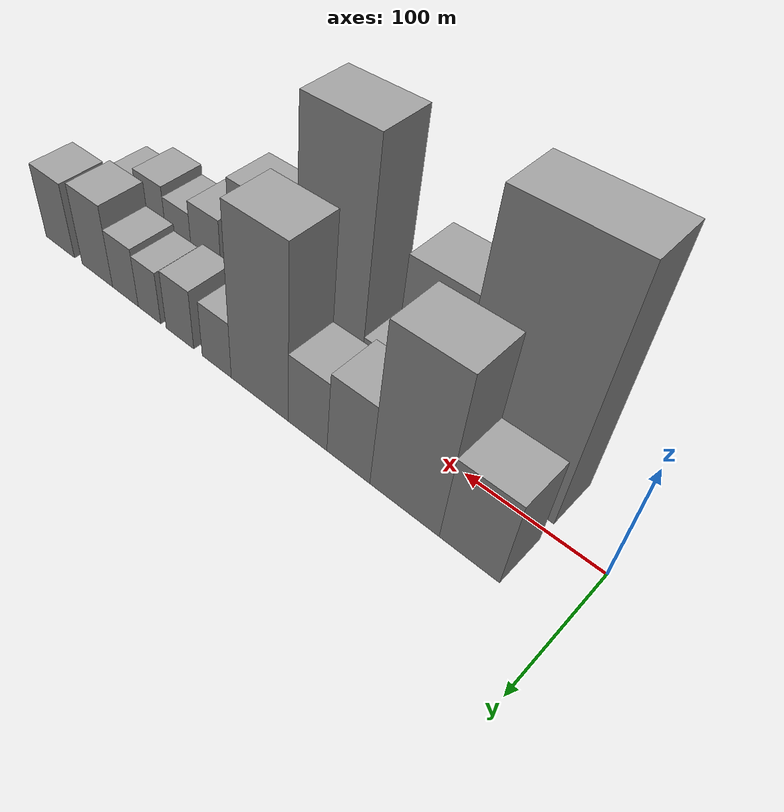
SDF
<sdf version="1.6">
 <world name="default">
  <scene>
   <sky><clouds><speed>12</speed></clouds></sky>
   <ambient>0.4 0.4 0.4 1</ambient>
   <background>0.7 0.7 0.7 1</background>
   <shadows>1</shadows>
  </scene>
  <gravity>0 0 -9.8066</gravity>
  <magnetic_field>6e-06 2.3e-05 -4.2e-05</magnetic_field>
  <physics default="0" name="default_physics" type="ode">
   <ode>
    <solver>
     <type>quick</type>
     <iters>10</iters>
     <sor>1.0</sor>
     <use_dynamic_moi_rescaling>0</use_dynamic_moi_rescaling>
    </solver>
    <constraints>
     <cfm>0</cfm>
     <erp>0.2</erp>
     <contact_max_correcting_vel>100</contact_max_correcting_vel>
     <contact_surface_layer>0.001</contact_surface_layer>
    </constraints>
   </ode>
   <max_step_size>0.004</max_step_size>
   <real_time_factor>1</real_time_factor>
   <real_time_update_rate>250</real_time_update_rate>
  </physics>
  <light name="sun" type="directional">
   <pose>0 0 10 0 0 0</pose>
   <diffuse>0.8 0.8 0.8 1</diffuse>
   <specular>0.2 0.2 0.2 1</specular>
   <attenuation>
    <range>1000</range>
    <constant>0.9</constant>
    <linear>0.01</linear>
    <quadratic>0.001</quadratic>
   </attenuation>
   <direction>-0.5 0.1 -0.9</direction>
  </light>
  <model name="building_1">
   <static>1</static>
   <pose>61.5399 27.5000 0 0.000000 0.000000 1.570796</pose>
   <link name="link">
    <pose>0 0 37.50 0 0 0</pose>
    <collision name="collision"><geometry><box><size>40.0000 43.0799 75.0000</size></box></geometry></collision>
    <visual name="visual">
     <cast_shadows>0</cast_shadows>
     <geometry><box><size>40.0000 43.0799 75.0000</size></box></geometry>
     <material>
      <script>
       <uri>model://grey_wall/materials/scripts</uri>
       <uri>model://grey_wall/materials/textures</uri>
       <name>vrc/grey_wall</name>
      </script>
     </material>
    </visual>
   </link>
  </model>
  <model name="building_2">
   <static>1</static>
   <pose>110.0550 27.5000 0 0.000000 0.000000 1.570796</pose>
   <link name="link">
    <pose>0 0 70.50 0 0 0</pose>
    <collision name="collision"><geometry><box><size>40.0000 53.9503 141.0000</size></box></geometry></collision>
    <visual name="visual">
     <cast_shadows>0</cast_shadows>
     <geometry><box><size>40.0000 53.9503 141.0000</size></box></geometry>
     <material>
      <script>
       <uri>model://grey_wall/materials/scripts</uri>
       <uri>model://grey_wall/materials/textures</uri>
       <name>vrc/grey_wall</name>
      </script>
     </material>
    </visual>
   </link>
  </model>
  <model name="building_3">
   <static>1</static>
   <pose>155.0801 27.5000 0 0.000000 0.000000 1.570796</pose>
   <link name="link">
    <pose>0 0 36.00 0 0 0</pose>
    <collision name="collision"><geometry><box><size>40.0000 36.0998 72.0000</size></box></geometry></collision>
    <visual name="visual">
     <cast_shadows>0</cast_shadows>
     <geometry><box><size>40.0000 36.0998 72.0000</size></box></geometry>
     <material>
      <script>
       <uri>model://grey_wall/materials/scripts</uri>
       <uri>model://grey_wall/materials/textures</uri>
       <name>vrc/grey_wall</name>
      </script>
     </material>
    </visual>
   </link>
  </model>
  <model name="building_4">
   <static>1</static>
   <pose>190.4187 27.5000 0 0.000000 0.000000 1.570796</pose>
   <link name="link">
    <pose>0 0 31.50 0 0 0</pose>
    <collision name="collision"><geometry><box><size>40.0000 34.5774 63.0000</size></box></geometry></collision>
    <visual name="visual">
     <cast_shadows>0</cast_shadows>
     <geometry><box><size>40.0000 34.5774 63.0000</size></box></geometry>
     <material>
      <script>
       <uri>model://grey_wall/materials/scripts</uri>
       <uri>model://grey_wall/materials/textures</uri>
       <name>vrc/grey_wall</name>
      </script>
     </material>
    </visual>
   </link>
  </model>
  <model name="building_5">
   <static>1</static>
   <pose>234.9427 27.5000 0 0.000000 0.000000 1.570796</pose>
   <link name="link">
    <pose>0 0 75.00 0 0 0</pose>
    <collision name="collision"><geometry><box><size>40.0000 54.4706 150.0000</size></box></geometry></collision>
    <visual name="visual">
     <cast_shadows>0</cast_shadows>
     <geometry><box><size>40.0000 54.4706 150.0000</size></box></geometry>
     <material>
      <script>
       <uri>model://grey_wall/materials/scripts</uri>
       <uri>model://grey_wall/materials/textures</uri>
       <name>vrc/grey_wall</name>
      </script>
     </material>
    </visual>
   </link>
  </model>
  <model name="building_6">
   <static>1</static>
   <pose>277.0516 27.5000 0 0.000000 0.000000 1.570796</pose>
   <link name="link">
    <pose>0 0 25.50 0 0 0</pose>
    <collision name="collision"><geometry><box><size>40.0000 29.7472 51.0000</size></box></geometry></collision>
    <visual name="visual">
     <cast_shadows>0</cast_shadows>
     <geometry><box><size>40.0000 29.7472 51.0000</size></box></geometry>
     <material>
      <script>
       <uri>model://grey_wall/materials/scripts</uri>
       <uri>model://grey_wall/materials/textures</uri>
       <name>vrc/grey_wall</name>
      </script>
     </material>
    </visual>
   </link>
  </model>
  <model name="building_7">
   <static>1</static>
   <pose>315.9096 27.5000 0 0.000000 0.000000 1.570796</pose>
   <link name="link">
    <pose>0 0 27.00 0 0 0</pose>
    <collision name="collision"><geometry><box><size>40.0000 29.9689 54.0000</size></box></geometry></collision>
    <visual name="visual">
     <cast_shadows>0</cast_shadows>
     <geometry><box><size>40.0000 29.9689 54.0000</size></box></geometry>
     <material>
      <script>
       <uri>model://grey_wall/materials/scripts</uri>
       <uri>model://grey_wall/materials/textures</uri>
       <name>vrc/grey_wall</name>
      </script>
     </material>
    </visual>
   </link>
  </model>
  <model name="building_8">
   <static>1</static>
   <pose>349.7772 27.5000 0 0.000000 0.000000 1.570796</pose>
   <link name="link">
    <pose>0 0 24.00 0 0 0</pose>
    <collision name="collision"><geometry><box><size>40.0000 25.7662 48.0000</size></box></geometry></collision>
    <visual name="visual">
     <cast_shadows>0</cast_shadows>
     <geometry><box><size>40.0000 25.7662 48.0000</size></box></geometry>
     <material>
      <script>
       <uri>model://grey_wall/materials/scripts</uri>
       <uri>model://grey_wall/materials/textures</uri>
       <name>vrc/grey_wall</name>
      </script>
     </material>
    </visual>
   </link>
  </model>
  <model name="building_9">
   <static>1</static>
   <pose>377.9914 27.5000 0 0.000000 0.000000 1.570796</pose>
   <link name="link">
    <pose>0 0 27.00 0 0 0</pose>
    <collision name="collision"><geometry><box><size>40.0000 30.6622 54.0000</size></box></geometry></collision>
    <visual name="visual">
     <cast_shadows>0</cast_shadows>
     <geometry><box><size>40.0000 30.6622 54.0000</size></box></geometry>
     <material>
      <script>
       <uri>model://grey_wall/materials/scripts</uri>
       <uri>model://grey_wall/materials/textures</uri>
       <name>vrc/grey_wall</name>
      </script>
     </material>
    </visual>
   </link>
  </model>
  <model name="building_10">
   <static>1</static>
   <pose>412.3694 27.5000 0 0.000000 0.000000 1.570796</pose>
   <link name="link">
    <pose>0 0 37.50 0 0 0</pose>
    <collision name="collision"><geometry><box><size>40.0000 38.0938 75.0000</size></box></geometry></collision>
    <visual name="visual">
     <cast_shadows>0</cast_shadows>
     <geometry><box><size>40.0000 38.0938 75.0000</size></box></geometry>
     <material>
      <script>
       <uri>model://grey_wall/materials/scripts</uri>
       <uri>model://grey_wall/materials/textures</uri>
       <name>vrc/grey_wall</name>
      </script>
     </material>
    </visual>
   </link>
  </model>
  <model name="building_11">
   <static>1</static>
   <pose>460.2208 27.5000 0 0.000000 0.000000 1.570796</pose>
   <link name="link">
    <pose>0 0 34.50 0 0 0</pose>
    <collision name="collision"><geometry><box><size>40.0000 37.6091 69.0000</size></box></geometry></collision>
    <visual name="visual">
     <cast_shadows>0</cast_shadows>
     <geometry><box><size>40.0000 37.6091 69.0000</size></box></geometry>
     <material>
      <script>
       <uri>model://grey_wall/materials/scripts</uri>
       <uri>model://grey_wall/materials/textures</uri>
       <name>vrc/grey_wall</name>
      </script>
     </material>
    </visual>
   </link>
  </model>
  <model name="building_12">
   <static>1</static>
   <pose>79.8585 -27.5000 0 0.000000 0.000000 1.570796</pose>
   <link name="link">
    <pose>0 0 102.00 0 0 0</pose>
    <collision name="collision"><geometry><box><size>40.0000 79.7170 204.0000</size></box></geometry></collision>
    <visual name="visual">
     <cast_shadows>0</cast_shadows>
     <geometry><box><size>40.0000 79.7170 204.0000</size></box></geometry>
     <material>
      <script>
       <uri>model://grey_wall/materials/scripts</uri>
       <uri>model://grey_wall/materials/textures</uri>
       <name>vrc/grey_wall</name>
      </script>
     </material>
    </visual>
   </link>
  </model>
  <model name="building_13">
   <static>1</static>
   <pose>143.9218 -27.5000 0 0.000000 0.000000 1.570796</pose>
   <link name="link">
    <pose>0 0 66.00 0 0 0</pose>
    <collision name="collision"><geometry><box><size>40.0000 48.4096 132.0000</size></box></geometry></collision>
    <visual name="visual">
     <cast_shadows>0</cast_shadows>
     <geometry><box><size>40.0000 48.4096 132.0000</size></box></geometry>
     <material>
      <script>
       <uri>model://grey_wall/materials/scripts</uri>
       <uri>model://grey_wall/materials/textures</uri>
       <name>vrc/grey_wall</name>
      </script>
     </material>
    </visual>
   </link>
  </model>
  <model name="building_14">
   <static>1</static>
   <pose>181.0359 -27.5000 0 0.000000 0.000000 1.570796</pose>
   <link name="link">
    <pose>0 0 24.00 0 0 0</pose>
    <collision name="collision"><geometry><box><size>40.0000 25.8187 48.0000</size></box></geometry></collision>
    <visual name="visual">
     <cast_shadows>0</cast_shadows>
     <geometry><box><size>40.0000 25.8187 48.0000</size></box></geometry>
     <material>
      <script>
       <uri>model://grey_wall/materials/scripts</uri>
       <uri>model://grey_wall/materials/textures</uri>
       <name>vrc/grey_wall</name>
      </script>
     </material>
    </visual>
   </link>
  </model>
  <model name="building_15">
   <static>1</static>
   <pose>224.1226 -27.5000 0 0.000000 0.000000 1.570796</pose>
   <link name="link">
    <pose>0 0 99.00 0 0 0</pose>
    <collision name="collision"><geometry><box><size>40.0000 60.3546 198.0000</size></box></geometry></collision>
    <visual name="visual">
     <cast_shadows>0</cast_shadows>
     <geometry><box><size>40.0000 60.3546 198.0000</size></box></geometry>
     <material>
      <script>
       <uri>model://grey_wall/materials/scripts</uri>
       <uri>model://grey_wall/materials/textures</uri>
       <name>vrc/grey_wall</name>
      </script>
     </material>
    </visual>
   </link>
  </model>
  <model name="building_16">
   <static>1</static>
   <pose>259.5123 -27.5000 0 0.000000 0.000000 1.570796</pose>
   <link name="link">
    <pose>0 0 10.50 0 0 0</pose>
    <collision name="collision"><geometry><box><size>40.0000 10.4248 21.0000</size></box></geometry></collision>
    <visual name="visual">
     <cast_shadows>0</cast_shadows>
     <geometry><box><size>40.0000 10.4248 21.0000</size></box></geometry>
     <material>
      <script>
       <uri>model://grey_wall/materials/scripts</uri>
       <uri>model://grey_wall/materials/textures</uri>
       <name>vrc/grey_wall</name>
      </script>
     </material>
    </visual>
   </link>
  </model>
  <model name="building_17">
   <static>1</static>
   <pose>268.5631 -27.5000 0 0.000000 0.000000 1.570796</pose>
   <link name="link">
    <pose>0 0 9.00 0 0 0</pose>
    <collision name="collision"><geometry><box><size>40.0000 7.6768 18.0000</size></box></geometry></collision>
    <visual name="visual">
     <cast_shadows>0</cast_shadows>
     <geometry><box><size>40.0000 7.6768 18.0000</size></box></geometry>
     <material>
      <script>
       <uri>model://grey_wall/materials/scripts</uri>
       <uri>model://grey_wall/materials/textures</uri>
       <name>vrc/grey_wall</name>
      </script>
     </material>
    </visual>
   </link>
  </model>
  <model name="building_18">
   <static>1</static>
   <pose>300.1345 -27.5000 0 0.000000 0.000000 1.570796</pose>
   <link name="link">
    <pose>0 0 54.00 0 0 0</pose>
    <collision name="collision"><geometry><box><size>40.0000 39.4659 108.0000</size></box></geometry></collision>
    <visual name="visual">
     <cast_shadows>0</cast_shadows>
     <geometry><box><size>40.0000 39.4659 108.0000</size></box></geometry>
     <material>
      <script>
       <uri>model://grey_wall/materials/scripts</uri>
       <uri>model://grey_wall/materials/textures</uri>
       <name>vrc/grey_wall</name>
      </script>
     </material>
    </visual>
   </link>
  </model>
  <model name="building_19">
   <static>1</static>
   <pose>327.8817 -27.5000 0 0.000000 0.000000 1.570796</pose>
   <link name="link">
    <pose>0 0 7.50 0 0 0</pose>
    <collision name="collision"><geometry><box><size>40.0000 6.0286 15.0000</size></box></geometry></collision>
    <visual name="visual">
     <cast_shadows>0</cast_shadows>
     <geometry><box><size>40.0000 6.0286 15.0000</size></box></geometry>
     <material>
      <script>
       <uri>model://grey_wall/materials/scripts</uri>
       <uri>model://grey_wall/materials/textures</uri>
       <name>vrc/grey_wall</name>
      </script>
     </material>
    </visual>
   </link>
  </model>
  <model name="building_20">
   <static>1</static>
   <pose>347.4209 -27.5000 0 0.000000 0.000000 1.570796</pose>
   <link name="link">
    <pose>0 0 33.00 0 0 0</pose>
    <collision name="collision"><geometry><box><size>40.0000 33.0497 66.0000</size></box></geometry></collision>
    <visual name="visual">
     <cast_shadows>0</cast_shadows>
     <geometry><box><size>40.0000 33.0497 66.0000</size></box></geometry>
     <material>
      <script>
       <uri>model://grey_wall/materials/scripts</uri>
       <uri>model://grey_wall/materials/textures</uri>
       <name>vrc/grey_wall</name>
      </script>
     </material>
    </visual>
   </link>
  </model>
  <model name="building_21">
   <static>1</static>
   <pose>378.7289 -27.5000 0 0.000000 0.000000 1.570796</pose>
   <link name="link">
    <pose>0 0 27.00 0 0 0</pose>
    <collision name="collision"><geometry><box><size>40.0000 29.5662 54.0000</size></box></geometry></collision>
    <visual name="visual">
     <cast_shadows>0</cast_shadows>
     <geometry><box><size>40.0000 29.5662 54.0000</size></box></geometry>
     <material>
      <script>
       <uri>model://grey_wall/materials/scripts</uri>
       <uri>model://grey_wall/materials/textures</uri>
       <name>vrc/grey_wall</name>
      </script>
     </material>
    </visual>
   </link>
  </model>
  <model name="building_22">
   <static>1</static>
   <pose>409.9689 -27.5000 0 0.000000 0.000000 1.570796</pose>
   <link name="link">
    <pose>0 0 31.50 0 0 0</pose>
    <collision name="collision"><geometry><box><size>40.0000 32.9138 63.0000</size></box></geometry></collision>
    <visual name="visual">
     <cast_shadows>0</cast_shadows>
     <geometry><box><size>40.0000 32.9138 63.0000</size></box></geometry>
     <material>
      <script>
       <uri>model://grey_wall/materials/scripts</uri>
       <uri>model://grey_wall/materials/textures</uri>
       <name>vrc/grey_wall</name>
      </script>
     </material>
    </visual>
   </link>
  </model>
  <model name="building_23">
   <static>1</static>
   <pose>446.7760 -27.5000 0 0.000000 0.000000 1.570796</pose>
   <link name="link">
    <pose>0 0 24.00 0 0 0</pose>
    <collision name="collision"><geometry><box><size>40.0000 28.7004 48.0000</size></box></geometry></collision>
    <visual name="visual">
     <cast_shadows>0</cast_shadows>
     <geometry><box><size>40.0000 28.7004 48.0000</size></box></geometry>
     <material>
      <script>
       <uri>model://grey_wall/materials/scripts</uri>
       <uri>model://grey_wall/materials/textures</uri>
       <name>vrc/grey_wall</name>
      </script>
     </material>
    </visual>
   </link>
  </model>
 </world>
</sdf>
